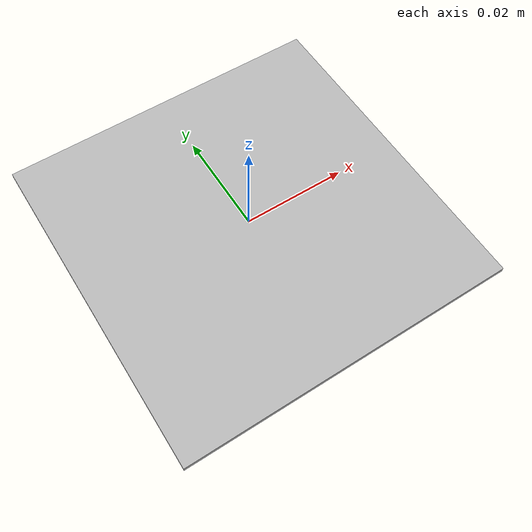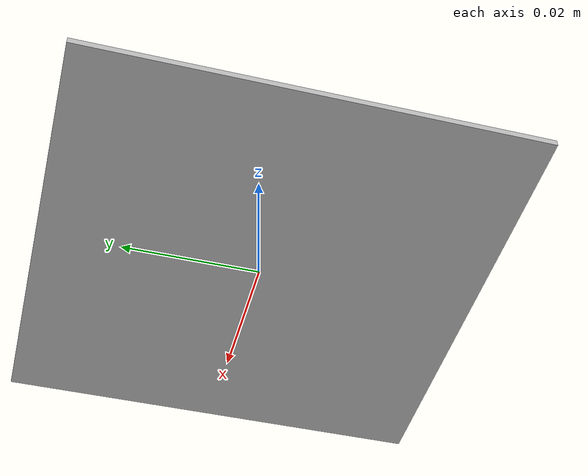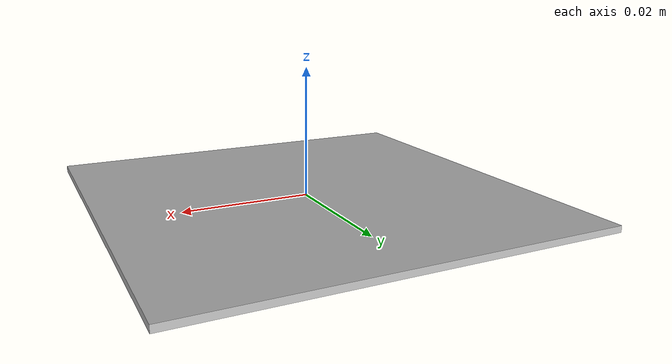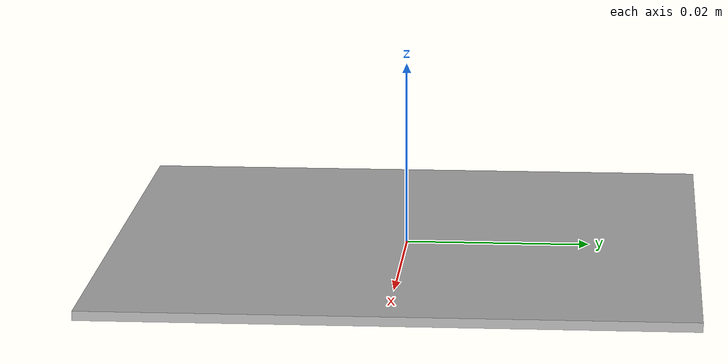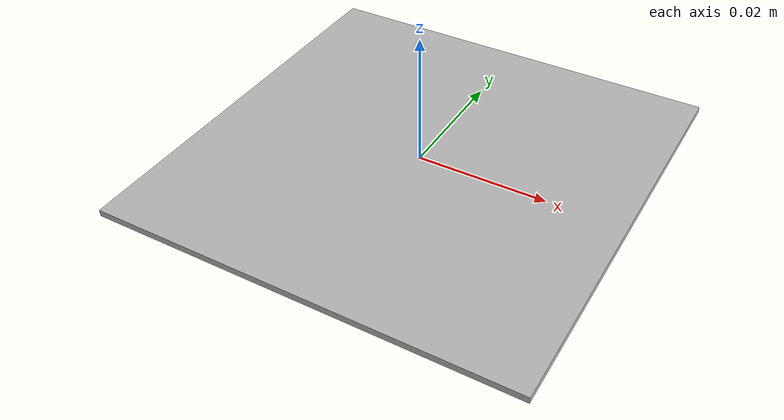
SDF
<?xml version='1.0'?>
<sdf version='1.6'>
  <model name='Apriltag36_11_00020'>
    <link name='main'>
    <pose frame=''>0 0 0 0 0 0</pose>
      <visual name='main_Visual'>
        <geometry>
          <box>
          <size>0.064 0.064 0.001</size>
          </box>
        </geometry>
           <material>
          <script>
            <uri>model://Apriltag36_11_00020/materials/scripts</uri>
            <uri>model://Apriltag36_11_00020/materials/textures</uri>
            <name>Apriltag36_11_00020</name>
          </script>
        </material>
      </visual>
     </link>
    <static>1</static>
  </model>
</sdf>
